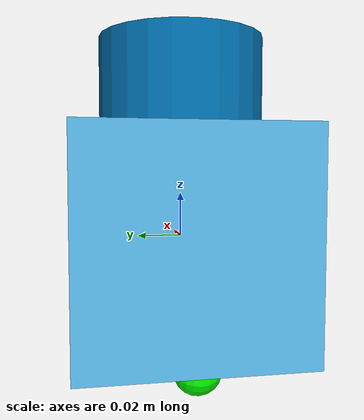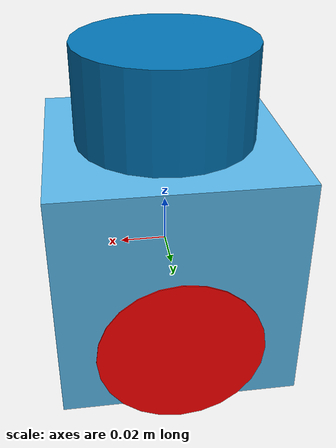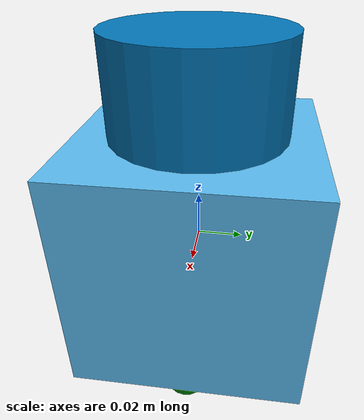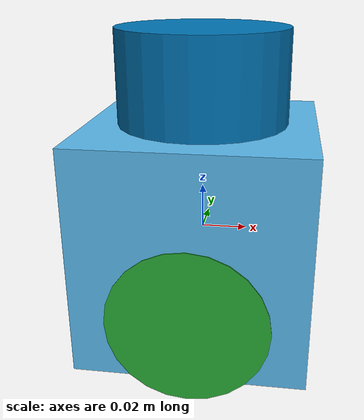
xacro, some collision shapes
<?xml version="1.0"?>
<robot xmlns:xacro="http://www.ros.org/wiki/xacro" name="box_bot">

  <xacro:property name="robot_name" value="$(arg robot_name)"/>
  <material name="red">
      <color rgba="1.0 0.0 0.0 1"/>
  </material>

  <material name="green_light">
      <color rgba="0.0 1.0 0.0 1"/>
  </material>

  <material name="green_dark">
    <color rgba="0.0 0.5 0.0 1"/>
  </material>

  <material name="blue">
      <color rgba="0.0 0.0 1.0 1"/>
  </material>

  <link name="base_link">
  </link>

  <!-- Body -->
  <link name="chassis">
    <visual>
      <geometry>
        <mesh filename="package://my_box_bot_description/meshes/cute_cube.dae" scale="0.1 0.1 0.1"/>
      </geometry>
    </visual>

    <collision>
      <geometry>
        <box size="0.1 0.1 0.1"/>
      </geometry>
    </collision>

    <inertial>
      <mass value="0.5"/>
      <origin rpy="0 0 0" xyz="0 0 0"/>
      <inertia ixx="0.0008333333333333335" ixy="0" ixz="0" iyy="0.0008333333333333335" iyz="0" izz="0.0008333333333333335"/>
    </inertial>

  </link>

  <joint name="base_link_joint" type="fixed">
    <origin rpy="0 0 0" xyz="0 0 0" />
    <parent link="base_link" />
    <child link="chassis" />
  </joint>

  <!-- Wheel Left -->
  <link name="left_wheel">
      <visual>
        <origin rpy="0 1.5707 1.5707" xyz="0 0 0"/>
        <geometry>
          <cylinder length="0.001" radius="0.035"/>
        </geometry>
        <material name="red"/>
      </visual>

      <collision>
        <origin rpy="0 1.5707 1.5707" xyz="0 0 0"/>
        <geometry>
          <cylinder length="0.001" radius="0.035"/>
        </geometry>
      </collision>

      <inertial>
        <origin rpy="0 1.5707 1.5707" xyz="0 0 0"/>
        <mass value="0.05"/>
        <inertia ixx="1.531666666666667e-05" ixy="0" ixz="0" iyy="1.531666666666667e-05" iyz="0" izz="3.0625000000000006e-05"/>
      </inertial>

  </link>

  <gazebo reference="left_wheel">
    <kp>1000000000000000000000000000.0</kp>
    <kd>1000000000000000000000000000.0</kd>
    <mu1>10.0</mu1>
    <mu2>10.0</mu2>
    <material>Gazebo/Green</material>
  </gazebo>

  <joint name="joint_left_wheel" type="continuous">
    <origin rpy="0 0 0" xyz="0 0.05 -0.025"/>
    <child link="left_wheel"/>
    <parent link="chassis"/>
    <axis rpy="0 0 0" xyz="0 1 0"/>
    <limit effort="10000" velocity="1000"/>
    <joint_properties damping="1.0" friction="1.0"/>
  </joint>

  <!-- Wheel Right -->
  <link name="right_wheel">
      <visual>
        <origin rpy="0 1.5707 1.5707" xyz="0 0 0"/>
        <geometry>
          <cylinder length="0.001" radius="0.035"/>
        </geometry>
        <material name="green"/>
      </visual>

      <collision>
        <origin rpy="0 1.5707 1.5707" xyz="0 0 0"/>
        <geometry>
          <cylinder length="0.001" radius="0.035"/>
        </geometry>
      </collision>

      <inertial>
        <origin rpy="0 1.5707 1.5707" xyz="0 0 0"/>
        <mass value="0.05"/>
        <inertia ixx="1.531666666666667e-05" ixy="0" ixz="0" iyy="1.531666666666667e-05" iyz="0" izz="3.0625000000000006e-05"/>
      </inertial>
  </link>

  <gazebo reference="right_wheel">
    <kp>1000000000000000000000000000.0</kp>
    <kd>1000000000000000000000000000.0</kd>
    <mu1>10.0</mu1>
    <mu2>10.0</mu2>
    <material>Gazebo/Orange</material>
  </gazebo>

  <joint name="joint_right_wheel" type="continuous">
    <origin rpy="0 0 0" xyz="0 -0.05 -0.025"/>
    <child link="right_wheel"/>
    <parent link="chassis"/>
    <axis rpy="0 0 0" xyz="0 1 0"/>
    <limit effort="10000" velocity="1000"/>
    <joint_properties damping="1.0" friction="1.0"/>
  </joint>

  <!-- Caster Wheel Front -->
  <link name="front_yaw_link">
      <visual>
        <origin rpy="0 1.5707 1.5707" xyz="0 0 0"/>
        <geometry>
          <cylinder length="0.001" radius="0.0045000000000000005"/>
        </geometry>
        <material name="blue"/>
      </visual>

      <collision>
        <origin rpy="0 1.5707 1.5707" xyz="0 0 0"/>
        <geometry>
          <cylinder length="0.001" radius="0.0045000000000000005"/>
        </geometry>
      </collision>

      <inertial>
          <origin rpy="0 1.5707 1.5707" xyz="0 0 0"/>
          <mass value="0.001"/>
          <inertia ixx="5.145833333333334e-09" ixy="0" ixz="0" iyy="5.145833333333334e-09" iyz="0" izz="1.0125000000000003e-08"/>
      </inertial>

  </link>

  <joint name="front_yaw_joint" type="continuous">
    <origin rpy="0 0 0" xyz="0.04 0 -0.05" />
    <parent link="chassis" />
    <child link="front_yaw_link" />
    <axis xyz="0 0 1" />
    <limit effort="1000.0" velocity="100.0" />
    <dynamics damping="0.0" friction="0.1"/>
  </joint>

    <gazebo reference="front_yaw_link">
        <material>Gazebo/Blue</material>
    </gazebo>

  <link name="front_roll_link">
      <visual>
        <origin rpy="0 1.5707 1.5707" xyz="0 0 0"/>
        <geometry>
          <cylinder length="0.001" radius="0.0045000000000000005"/>
        </geometry>
        <material name="red"/>
      </visual>

      <collision>
        <origin rpy="0 1.5707 1.5707" xyz="0 0 0"/>
        <geometry>
          <cylinder length="0.001" radius="0.0045000000000000005"/>
        </geometry>
      </collision>

      <inertial>
          <origin rpy="0 1.5707 1.5707" xyz="0 0 0"/>
          <mass value="0.001"/>
          <inertia ixx="5.145833333333334e-09" ixy="0" ixz="0" iyy="5.145833333333334e-09" iyz="0" izz="1.0125000000000003e-08"/>
      </inertial>
  </link>

  <joint name="front_roll_joint" type="continuous">
    <origin rpy="0 0 0" xyz="0 0 0" />
    <parent link="front_yaw_link" />
    <child link="front_roll_link" />
    <axis xyz="1 0 0" />
    <limit effort="1000.0" velocity="100.0" />
    <dynamics damping="0.0" friction="0.1"/>
  </joint>

    <gazebo reference="front_roll_link">
        <material>Gazebo/Red</material>
    </gazebo>

  <link name="front_pitch_link">
    <visual>
      <origin rpy="0 1.5707 1.5707" xyz="0 0 0"/>
      <geometry>
        <sphere radius="0.010"/>
      </geometry>
      <material name="green_dark"/>
    </visual>

    <collision>
      <origin rpy="0 1.5707 1.5707" xyz="0 0 0"/>
      <geometry>
        <sphere radius="0.010"/>
      </geometry>
    </collision>

    <inertial>
        <origin rpy="0 1.5707 1.5707" xyz="0 0 0"/>
        <mass value="0.001"/>
        <inertia ixx="4e-08" ixy="0" ixz="0" iyy="4e-08" iyz="0" izz="4e-08"/>
    </inertial>
  </link>

  <gazebo reference="front_pitch_link">
    <kp>1000000000000000000000000000.0</kp>
    <kd>1000000000000000000000000000.0</kd>
    <mu1>0.5</mu1>
    <mu2>0.5</mu2>
    <material>Gazebo/Purple</material>
  </gazebo>

  <joint name="front_pitch_joint" type="continuous">
    <origin rpy="0 0 0" xyz="0 0 0" />
    <parent link="front_roll_link" />
    <child link="front_pitch_link" />
    <axis xyz="0 1 0" />
    <limit effort="1000.0" velocity="100.0" />
    <dynamics damping="0.0" friction="0.1"/>
  </joint>

<!-- Caster Wheel Back -->
  <link name="back_yaw_link">
    <visual>
        <origin rpy="0 1.5707 1.5707" xyz="0 0 0"/>
        <geometry>
          <cylinder length="0.001" radius="0.0045000000000000005"/>
        </geometry>
        <material name="blue"/>
      </visual>

      <collision>
        <origin rpy="0 1.5707 1.5707" xyz="0 0 0"/>
        <geometry>
          <cylinder length="0.001" radius="0.0045000000000000005"/>
        </geometry>
      </collision>

      <inertial>
          <origin rpy="0 1.5707 1.5707" xyz="0 0 0"/>
          <mass value="0.001"/>
          <inertia ixx="5.145833333333334e-09" ixy="0" ixz="0" iyy="5.145833333333334e-09" iyz="0" izz="1.0125000000000003e-08"/>
      </inertial>
  </link>

  <joint name="back_yaw_joint" type="continuous">
    <origin rpy="0 0 0" xyz="-0.04 0 -0.05" />
    <parent link="chassis" />
    <child link="back_yaw_link" />
    <axis xyz="0 0 1" />
    <limit effort="1000.0" velocity="100.0" />
    <dynamics damping="0.0" friction="0.1"/>
  </joint>

    <gazebo reference="back_yaw_link">
        <material>Gazebo/Blue</material>
    </gazebo>

  <link name="back_roll_link">
      <visual>
        <origin rpy="0 1.5707 1.5707" xyz="0 0 0"/>
        <geometry>
          <cylinder length="0.001" radius="0.0045000000000000005"/>
        </geometry>
        <material name="red"/>
      </visual>

      <collision>
        <origin rpy="0 1.5707 1.5707" xyz="0 0 0"/>
        <geometry>
          <cylinder length="0.001" radius="0.0045000000000000005"/>
        </geometry>
      </collision>

      <inertial>
          <origin rpy="0 1.5707 1.5707" xyz="0 0 0"/>
          <mass value="0.001"/>
          <inertia ixx="5.145833333333334e-09" ixy="0" ixz="0" iyy="5.145833333333334e-09" iyz="0" izz="1.0125000000000003e-08"/>
      </inertial>
  </link>

  <joint name="back_roll_joint" type="continuous">
    <origin rpy="0 0 0" xyz="0 0 0" />
    <parent link="back_yaw_link" />
    <child link="back_roll_link" />
    <axis xyz="1 0 0" />
    <limit effort="1000.0" velocity="100.0" />
    <dynamics damping="0.0" friction="0.1"/>
  </joint>

    <gazebo reference="back_roll_link">
        <material>Gazebo/Red</material>
    </gazebo>

  <link name="back_pitch_link">
    <visual>
      <origin rpy="0 1.5707 1.5707" xyz="0 0 0"/>
      <geometry>
        <sphere radius="0.010"/>
      </geometry>
      <material name="green_light"/>
    </visual>

    <collision>
      <origin rpy="0 1.5707 1.5707" xyz="0 0 0"/>
      <geometry>
        <sphere radius="0.010"/>
      </geometry>
    </collision>

    <inertial>
        <origin rpy="0 1.5707 1.5707" xyz="0 0 0"/>
        <mass value="0.001"/>
        <inertia ixx="4e-08" ixy="0" ixz="0" iyy="4e-08" iyz="0" izz="4e-08"/>
    </inertial>
  </link>

  <gazebo reference="back_pitch_link">
    <kp>1000000000000000000000000000.0</kp>
    <kd>1000000000000000000000000000.0</kd>
    <mu1>0.5</mu1>
    <mu2>0.5</mu2>
    <material>Gazebo/Yellow</material>
  </gazebo>

  <joint name="back_pitch_joint" type="continuous">
    <origin rpy="0 0 0" xyz="0 0 0" />
    <parent link="back_roll_link" />
    <child link="back_pitch_link" />
    <axis xyz="0 1 0" />
    <limit effort="1000.0" velocity="100.0" />
    <dynamics damping="0.0" friction="0.1"/>
  </joint>

  <!-- PLUGINS -->

  <!-- JOINT PUBLISHER -->
  <gazebo>
    <plugin name="box_bot_joint_state" filename="libgazebo_ros_joint_state_publisher.so">
      <ros>
          <namespace>/${robot_name}</namespace>
          <remapping>~/out:=joint_states</remapping>
      </ros>
      <update_rate>30</update_rate>

      <joint_name>joint_left_wheel</joint_name>
      <joint_name>joint_right_wheel</joint_name>
      <joint_name>front_yaw_joint</joint_name>
      <joint_name>back_yaw_joint</joint_name>
      <joint_name>front_roll_joint</joint_name>
      <joint_name>back_roll_joint</joint_name>
      <joint_name>front_pitch_joint</joint_name>
      <joint_name>back_pitch_joint</joint_name>

    </plugin>
  </gazebo>

  <!-- Differential drive -->
  <gazebo>
    <plugin filename="libgazebo_ros_diff_drive.so" name="differential_drive_controller">

      <!-- wheels -->
      <left_joint>joint_left_wheel</left_joint>
      <right_joint>joint_right_wheel</right_joint>

      <!-- kinematics -->
      <wheel_separation>0.1</wheel_separation>
      <wheel_diameter>0.07</wheel_diameter>

      <!-- limits -->
      <max_wheel_torque>1.0</max_wheel_torque>
      <max_wheel_acceleration>2.0</max_wheel_acceleration>

      <!-- output -->
      <publish_odom>true</publish_odom>
      <publish_odom_tf>true</publish_odom_tf>

      <odometry_frame>${robot_name}/odom</odometry_frame>
      <robot_base_frame>${robot_name}/base_link</robot_base_frame>

    </plugin>
  </gazebo>

  <!-- Laser Position Control-->

  <link name="laser_scan_link">
    <visual>
      <origin rpy="0 0 0" xyz="0 0 0"/>
      <geometry>
        <box size="0.02 0.02 0.02"/>
      </geometry>
    </visual>

    <collision>
       <origin rpy="0 0 0" xyz="0 0 0.0204"/>
      <geometry>
        <box size="0.02 0.02 0.02"/>
      </geometry>
    </collision>

    <inertial>

      <mass value="0.01"/>
      <origin rpy="0 0 0" xyz="0 0 0.0204"/>
      <inertia ixx="6.066578520833334e-06" ixy="0" ixz="0" iyy="6.072950163333333e-06" iyz="0" izz="9.365128684166666e-06"/>
    </inertial>
  </link>

  <joint name="laser_scan_link_joint" type="prismatic">
    <origin rpy="0 0 0" xyz="0.0 0.0 0.05"/>
    <parent link="chassis"/>
    <child link="laser_scan_link"/>
    <axis xyz="0 0 1"/>
    <limit lower="-0.1" upper="0.0" effort="20.0" velocity="2.0"/>
    <dynamics damping="0.1" friction="1.0"/>
  </joint>

  <link name="laser_scan_frame">
  </link>

  <joint name="laser_scan_frame_joint" type="fixed">
    <origin rpy="0 0 0" xyz="0 0 0.03"/>
    <parent link="laser_scan_link"/>
    <child link="laser_scan_frame"/>
    <axis xyz="0 0 0"/>
  </joint>

  <!-- Visual Laser Model to be rotated -->
  <link name="laser_scan_model_link">
    <visual>
      <origin rpy="0 0 0" xyz="0 0 0"/>
      <geometry>
        <mesh filename="package://my_box_bot_description/meshes/sensors/rplidar.dae" scale="1.0 1.0 1.0"/>
      </geometry>
    </visual>

    <collision>
       <origin rpy="0 0 0" xyz="0 0 0.0204"/>
      <geometry>
        <cylinder length="0.0408" radius="0.037493"/>
      </geometry>
    </collision>

    <inertial>

      <mass value="0.01"/>
      <origin rpy="0 0 0" xyz="0 0 0.0204"/>
      <inertia ixx="6.066578520833334e-06" ixy="0" ixz="0" iyy="6.072950163333333e-06" iyz="0" izz="9.365128684166666e-06"/>
    </inertial>
  </link>

  <joint name="laser_scan_model_link_joint" type="continuous">
    <origin rpy="0 0 0" xyz="0.0 0.0 0.0"/>
    <parent link="laser_scan_link"/>
    <child link="laser_scan_model_link"/>
    <axis xyz="0 0 1"/>
    <limit effort="10.0" velocity="2.0"/>
    <dynamics friction="0.01"/>
  </joint>

  <!-- Position Config -->
    <ros2_control name="GazeboSystem" type="system">
      <hardware>
        <plugin>gazebo_ros2_control/GazeboSystem</plugin>
      </hardware>

      <joint name="laser_scan_link_joint">
        <command_interface name="position">
          <param name="min">-0.05</param>
          <param name="max">0.0</param>
        </command_interface>
        <state_interface name="position"/>
        <state_interface name="velocity"/>
        <state_interface name="effort"/>
      </joint>

      <joint name="laser_scan_model_link_joint">
        <command_interface name="velocity">
          <param name="min">0.0</param>
          <param name="max">2.0</param>
        </command_interface>
        <state_interface name="position"/>
        <state_interface name="velocity"/>
        <state_interface name="effort"/>
      </joint>

  </ros2_control>

  <gazebo>
    <plugin filename="libgazebo_ros2_control.so" name="gazebo_ros2_control">
      <parameters>$(find my_box_bot_description)/config/controller_position_velocity.yaml</parameters>
      <robot_param_node>/my_robot_state_publisher_node</robot_param_node>
    </plugin>
  </gazebo>

  <!-- Sensors -->
  <gazebo reference="laser_scan_frame">
    <sensor name="sensor_ray" type="ray">
        <pose>0 0 0 0 0 0</pose>
        <ray>
          <scan>
            <horizontal>
              <samples>200</samples>
              <resolution>1.0</resolution>
              <min_angle>-3.14</min_angle>
              <max_angle>3.14</max_angle>
            </horizontal>
          </scan>
          <range>
            <min>0.1</min>
            <max>5.0</max>
          </range>
        </ray>
        <always_on>true</always_on>
        <visualize>true</visualize>
        <update_rate>100.0</update_rate>
        <plugin name="laser" filename="libgazebo_ros_ray_sensor.so">
          <ros>
            <namespace>/${robot_name}</namespace>
            <remapping>~/out:=laser_scan</remapping>
          </ros>
          <output_type>sensor_msgs/LaserScan</output_type>
        </plugin>
      </sensor>
	</gazebo>

  <link name="pointcloud_link">
  </link>

  <joint name="pointcloud_link_joint" type="fixed">
    <origin rpy="0 0 0" xyz="0.051 0.0 0"/>
    <parent link="chassis"/>
    <child link="pointcloud_link"/>
    <axis xyz="0 0 0"/>
  </joint>

  <gazebo reference="pointcloud_link">
      <sensor type="ray" name="pointcloud_sensor">
          <ray>
          <scan>
              <horizontal>
                  <samples>50</samples>
                  <resolution>1.0</resolution>
                  <min_angle>-1.0</min_angle>
                  <max_angle>1.0</max_angle>
              </horizontal>
              <vertical>
                  <samples>50</samples>
                  <resolution>1.0</resolution>
                  <min_angle>-1.0</min_angle>
                  <max_angle>1.0</max_angle>
              </vertical>
          </scan>
          <range>
              <min>0.10</min>
              <max>5.0</max>
              <resolution>0.01</resolution>
          </range>
          <!-- Using gazebo's noise instead of plugin's -->
          <noise>
              <type>gaussian</type>
              <mean>0.0</mean>
              <stddev>0.01</stddev>
          </noise>
          </ray>
          <!-- Using gazebo's update rate instead of plugin's -->
          <update_rate>30</update_rate>
          <plugin name="gazebo_ros_block_laser_controller" filename="libgazebo_ros_ray_sensor.so">
          <!-- Change namespace and output topic so published topic is /rrbot/laser/pointcloud -->
          <ros>
              <namespace>/${robot_name}</namespace>
              <argument>~/out:=pointcloud</argument>
          </ros>
          <!-- Set output to sensor_msgs/PointCloud to get same output type as gazebo_ros_block_laser -->
          <output_type>sensor_msgs/PointCloud</output_type>
          <frame_name>${robot_name}/pointcloud_link</frame_name>

          <!-- min_intensity instead of hokuyoMinIntensity -->
          <min_intensity>100.0</min_intensity>
          </plugin>
      </sensor>
  </gazebo>

  <!-- RGB CAMERA -->
  <link name="rgb_camera_link_frame">
  </link>

  <joint name="rgb_camera_link_frame_joint" type="fixed">
      <origin rpy="0 0 0" xyz="0.051 0.0 0.05"/>
      <parent link="chassis" />
      <child link="rgb_camera_link_frame" />
      <axis xyz="0 0 0"/>
  </joint>

    <gazebo reference="rgb_camera_link_frame">
        <sensor name="camera" type="wideanglecamera">
          <camera>
            <horizontal_fov>6.283</horizontal_fov>
            <image>
              <width>320</width>
              <height>240</height>
            </image>
            <clip>
              <near>0.1</near>
              <far>100</far>
            </clip>
            <lens>
              <type>custom</type>
              <custom_function>
                <c1>1.05</c1>
                <c2>4</c2>
                <f>1.0</f>
                <fun>tan</fun>
              </custom_function>
              <scale_to_hfov>true</scale_to_hfov>
              <cutoff_angle>3.1415</cutoff_angle>
              <env_texture_size>512</env_texture_size>
            </lens>
            <always_on>1</always_on>
            <update_rate>30</update_rate>
          </camera>
          <plugin name="camera_controller" filename="libgazebo_ros_camera.so">
            <cameraName>${robot_name}/rgb_camera</cameraName>
            <imageTopicName>${robot_name}/image_raw</imageTopicName>
            <cameraInfoTopicName>${robot_name}/camera_info</cameraInfoTopicName>
            <frameName>${robot_name}/rgb_camera_link_frame</frameName>
            <hackBaseline>0.07</hackBaseline>
          </plugin>
        </sensor>
    </gazebo>

</robot>
